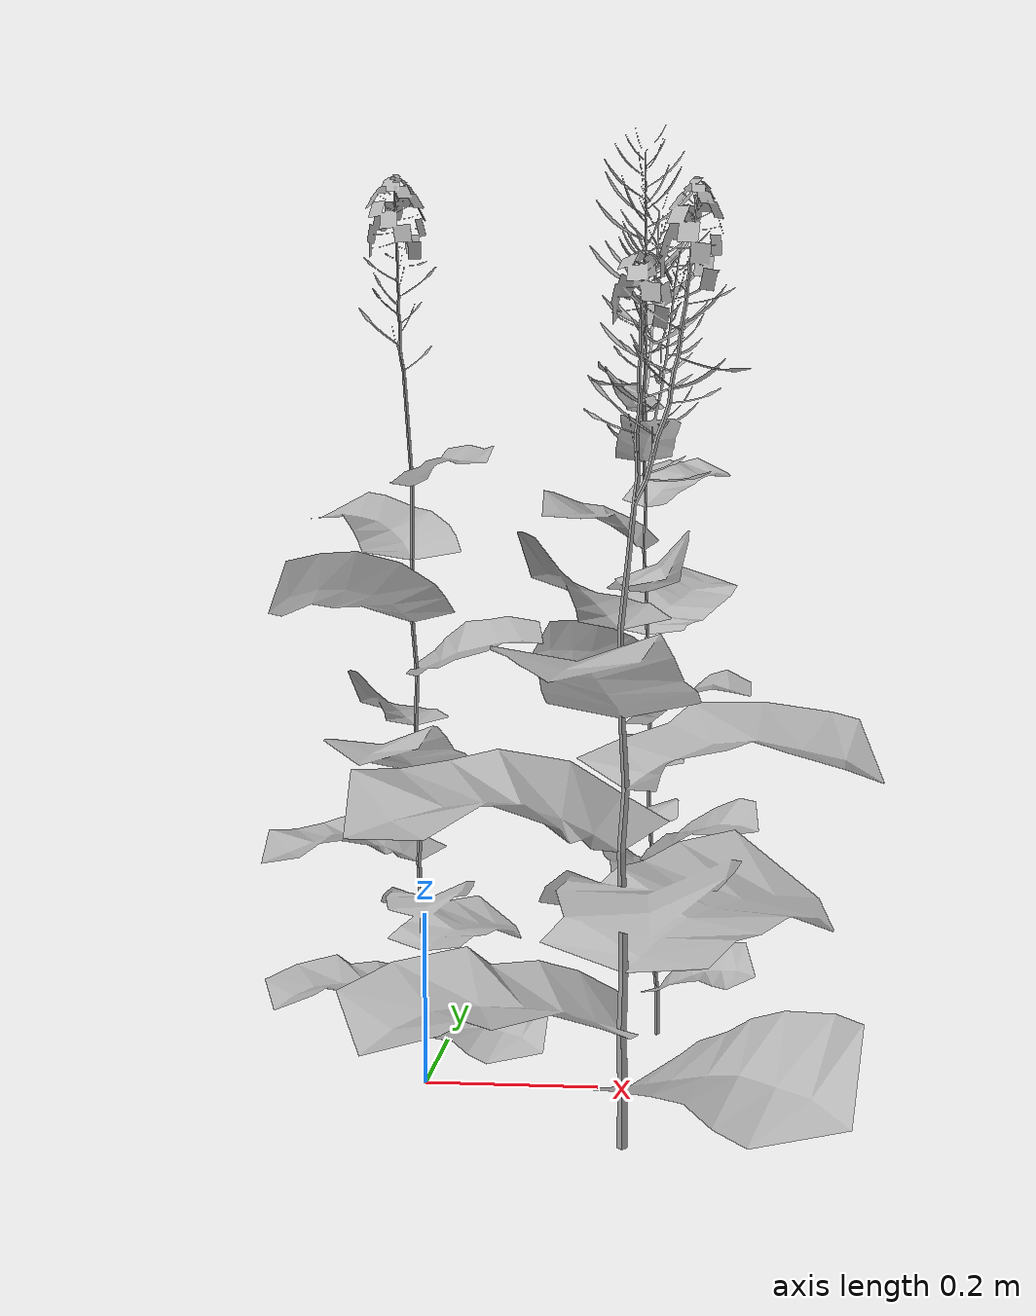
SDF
<?xml version="1.0" ?>
<sdf version="1.6">
  <model name="weed7">
    <static>1</static>
    <link name="weed7_1">

      <visual name="weed7_1">
        <geometry>
          <mesh>
            <uri>model://weed7/meshes/GC22_v1.obj</uri>
          </mesh>
        </geometry>
        <cast_shadows>1</cast_shadows>
      </visual>
        <pose>0 0 0 0 0 0</pose>
    </link>
    <link name="weed7_2">

      <visual name="weed7_2">
        <geometry>
          <mesh>
            <uri>model://weed7/meshes/GC22_v2.obj</uri>
          </mesh>
        </geometry>
        <cast_shadows>1</cast_shadows>
      </visual>
        <pose>0.25 -0.25 0 0 0 0</pose>
    </link>
    <link name="weed7_3">

      <visual name="weed7_3">
        <geometry>
          <mesh>
            <uri>model://weed7/meshes/GC22_v3.obj</uri>
          </mesh>
        </geometry>
        <cast_shadows>1</cast_shadows>
      </visual>
        <pose>0.25 0.25 0 0 0 0</pose>
    </link>
  </model>

</sdf>
